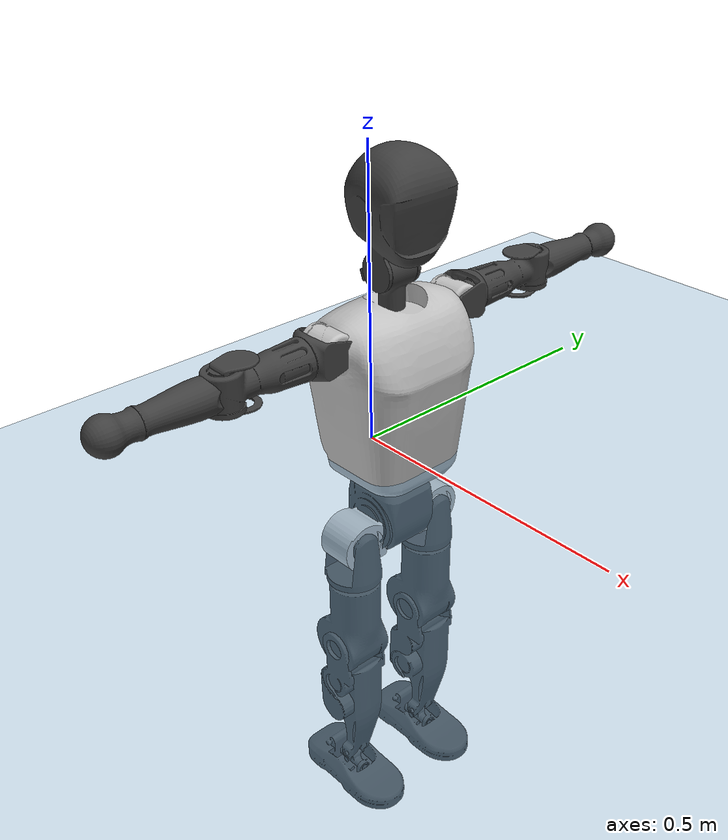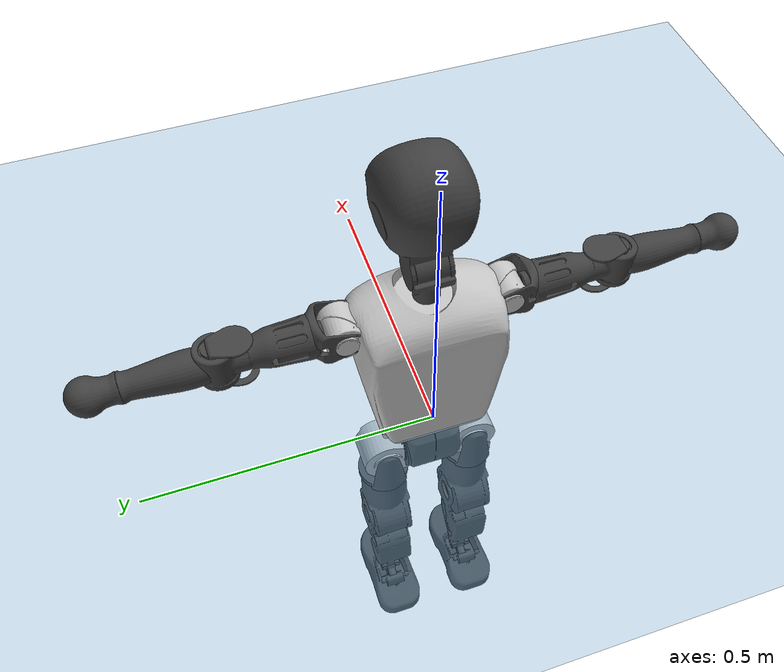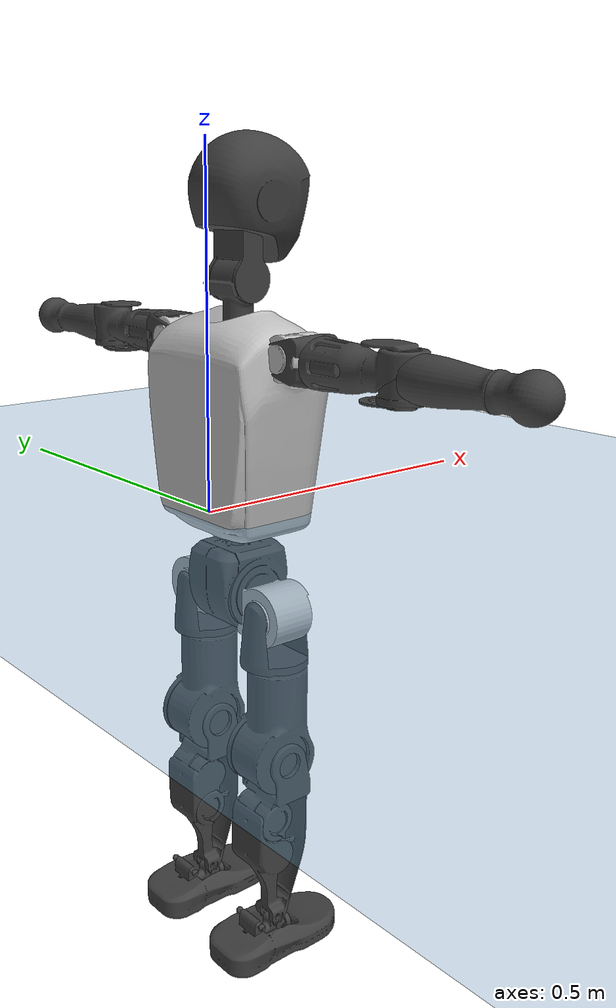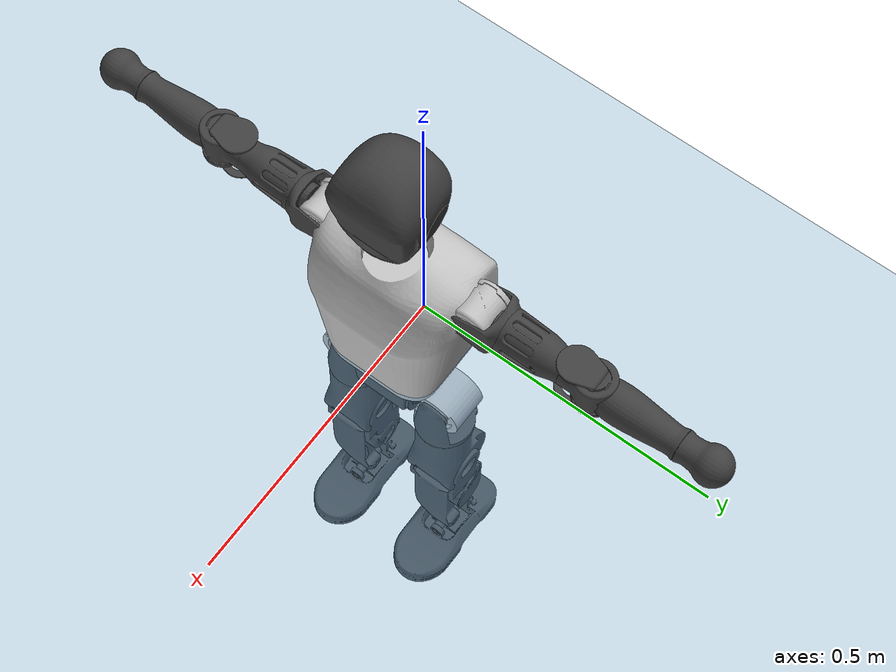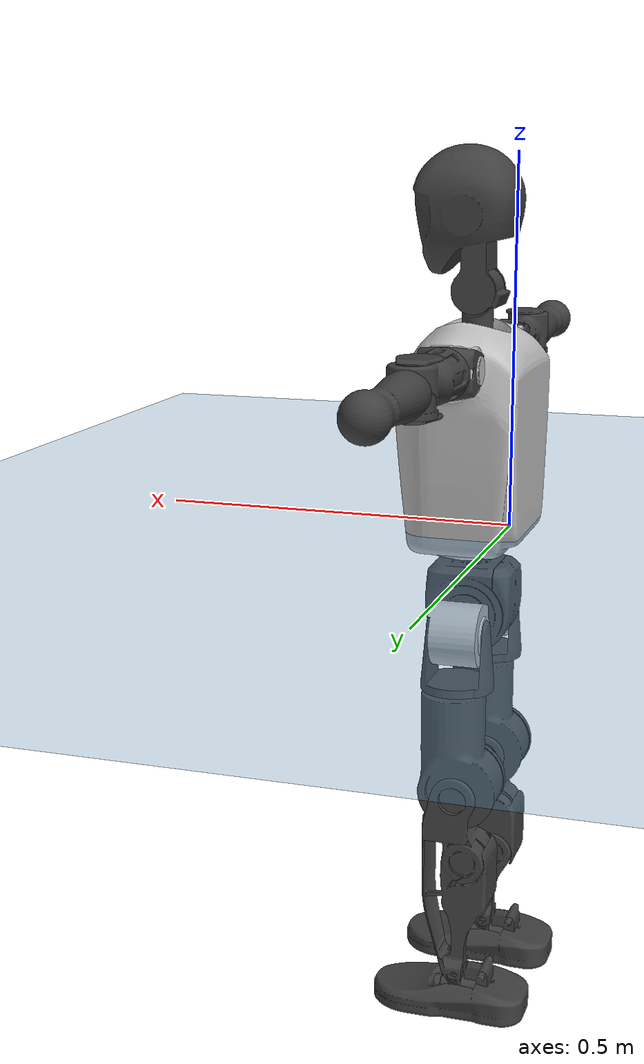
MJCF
<mujoco model="T1">
  <compiler angle="radian" assetdir="assets" balanceinertia="true" inertiafromgeom="false"/>

  <option timestep="0.005" density="1.2" viscosity="2e-05"/>

  <size nkey="1"/>

  <visual>
    <quality shadowsize="8192"/>
    <map shadowclip="0.5"/>
  </visual>

  <default>
    <default class="/">
      <joint armature="0.01" damping="0.01" frictionloss="0.1"/>
      <geom contype="0" conaffinity="0" group="1" solref="-1000 -80"/>
      <site size="0.01 0.005 0.005" group="5"/>
      <general forcelimited="true" biastype="affine" gainprm="25" biasprm="0 -25 -0.6"/>
      <default class="t1">
        <geom rgba="0.25 0.25 0.25 1"/>
        <default class="visual">
          <geom type="mesh" group="2"/>
        </default>
        <default class="collision">
          <geom group="3"/>
        </default>
        <default class="foot">
          <geom size="0.1115 0.05 0.015" type="box" condim="6" group="4" priority="1" solimp="0.015 1 0.015"/>
        </default>
        <default class="reward_collision_sphere">
          <geom group="5" rgba="1 0 0 1"/>
        </default>
      </default>
    </default>
  </default>

  <asset>
    <texture type="skybox" colorspace="auto" name="//unnamed_texture_0" builtin="gradient" rgb1="0.95 0.95 0.95" rgb2="0.95 0.95 0.95" width="100" height="600"/>
    <texture type="2d" colorspace="auto" name="texplane" builtin="checker" rgb1="0.345 0.575 0.748" rgb2="0.345 0.575 0.748" markrgb="1 1 1" width="512" height="512"/>
    <material name="MatPlane" class="/" texture="texplane" texuniform="true" texrepeat="2 2" specular="0.9"/>
    <mesh name="Trunk" class="/" file="Trunk.stl"/>
    <mesh name="H1" class="/" file="H1.stl"/>
    <mesh name="H2" class="/" file="H2.stl"/>
    <mesh name="AL1" class="/" file="AL1.stl"/>
    <mesh name="AL2" class="/" file="AL2.stl"/>
    <mesh name="AL3" class="/" file="AL3.stl"/>
    <mesh name="left_hand_link" class="/" file="left_hand_link.stl"/>
    <mesh name="AR1" class="/" file="AR1.stl"/>
    <mesh name="AR2" class="/" file="AR2.stl"/>
    <mesh name="AR3" class="/" file="AR3.stl"/>
    <mesh name="right_hand_link" class="/" file="right_hand_link.stl"/>
    <mesh name="Waist" class="/" file="Waist.stl"/>
    <mesh name="Hip_Pitch_Left" class="/" file="Hip_Pitch_Left.stl"/>
    <mesh name="Hip_Roll_Left" class="/" file="Hip_Roll_Left.stl"/>
    <mesh name="Hip_Yaw_Left" class="/" file="Hip_Yaw_Left.stl"/>
    <mesh name="Shank_Left" class="/" file="Shank_Left.stl"/>
    <mesh name="Ankle_Cross_Left" class="/" file="Ankle_Cross_Left.stl"/>
    <mesh name="left_foot_link" class="/" file="left_foot_link.stl"/>
    <mesh name="Hip_Pitch_Right" class="/" file="Hip_Pitch_Right.stl"/>
    <mesh name="Hip_Roll_Right" class="/" file="Hip_Roll_Right.stl"/>
    <mesh name="Hip_Yaw_Right" class="/" file="Hip_Yaw_Right.stl"/>
    <mesh name="Shank_Right" class="/" file="Shank_Right.stl"/>
    <mesh name="Ankle_Cross_Right" class="/" file="Ankle_Cross_Right.stl"/>
    <mesh name="right_foot_link" class="/" file="right_foot_link.stl"/>
  </asset>

  <worldbody>
    <geom name="floor" class="/" size="100 100 0.125" type="plane" group="0" material="MatPlane"/>
    <light name="toplight_shadow" class="/" pos="0 0 5" dir="0.0990148 0.0990148 -0.990148" type="directional" ambient="0.04 0.04 0.04" diffuse="0.55 0.55 0.55" specular="0.12 0.12 0.12"/>
    <light name="toplight_fill" class="/" pos="0 0 5" dir="0.0990148 0.0990148 -0.990148" type="directional" castshadow="false" ambient="0.04 0.04 0.04" diffuse="0.3 0.3 0.3" specular="0.08 0.08 0.08"/>
    <body name="trunk" childclass="t1" pos="0.000134664 -0.000918022 0.00192928" quat="1 4.73415e-05 1.01573e-05 -5.85116e-05">
      <inertial pos="0.0460021 -0.00261155 0.110641" quat="0.99992 0.0014462 -0.0121543 -0.00330592" mass="8.2842" diaginertia="0.0358169 0.0245041 0.0716694"/>
      <joint name="//unnamed_joint_0" type="free" armature="0" damping="0" frictionloss="0"/>
      <geom name="//unnamed_geom_1" class="visual" rgba="0.76 0.76 0.76 1" mesh="Trunk"/>
      <geom name="//unnamed_geom_2" class="collision" size="0.0668079 0.0890772 0.133616" pos="0.0495948 0 0.126037" type="box"/>
      <geom name="//unnamed_geom_3" class="reward_collision_sphere" size="0.102439" pos="0.0495948 0 0.105031"/>
      <geom name="//unnamed_geom_4" class="reward_collision_sphere" size="0.0133616" pos="0.0495948 0.0676117 0"/>
      <geom name="//unnamed_geom_5" class="reward_collision_sphere" size="0.0133616" pos="0.0495948 -0.0676117 0"/>
      <geom name="//unnamed_geom_6" class="reward_collision_sphere" size="0.0133616" pos="0.0495948 0.0851111 0.189055"/>
      <geom name="//unnamed_geom_7" class="reward_collision_sphere" size="0.0133616" pos="0.0495948 -0.0851111 0.189055"/>
      <site name="imu" pos="-0.000382956 0.012216 0.00198072" size="0.00890772"/>
      <camera name="track" pos="0 -1.59086 0" quat="0.707107 0.707107 0 0" mode="trackcom"/>
      <camera name="ego_camera" pos="0.100843 0 0.441129" quat="-0.5 -0.5 0.5 0.5"/>
      <body name="H1" pos="0.0514642 -0.00133176 0.255639" quat="0.999999 -0.00103792 0.000510383 -6.8652e-05">
        <inertial pos="-0.00152568 -0.000304082 0.0599311" quat="0.761882 -0.0116503 -0.00082456 0.64761" mass="0.307674" diaginertia="9.37897e-05 7.21431e-05 0.000196504"/>
        <joint name="AAHead_yaw" pos="0 0 0" axis="-0.00214913 -0.00297368 0.999993" range="-1.57729 1.62315" armature="0.00867916" damping="0" frictionloss="0.0838433"/>
        <geom name="//unnamed_geom_8" class="visual" mesh="H1"/>
        <body name="H2" pos="-0.000302051 0.000361096 0.0621895" quat="0.999999 -0.00033408 0.00108224 -0.000676">
          <inertial pos="0.00567422 0.00154981 0.105362" quat="0.988071 0.108199 -0.0717881 -0.0827983" mass="0.445378" diaginertia="0.00078536 0.000613085 0.00216116"/>
          <joint name="Head_pitch" pos="0 0 0" axis="9.76039e-05 -0.999961 0.0088368" range="-1.24377 0.354434" armature="0.00919781" damping="0.00582554" frictionloss="0.0910714"/>
          <geom name="//unnamed_geom_9" class="visual" mesh="H2"/>
          <geom name="//unnamed_geom_10" class="collision" size="0.0712618" pos="0.00826579 0 0.115534"/>
          <geom name="//unnamed_geom_11" class="reward_collision_sphere" size="0.0801695" pos="0.0165316 0 0.105031"/>
        </body>
      </body>
      <body name="AL1" pos="0.049402 0.0864198 0.229031" quat="1 0.000378174 0.000419092 -1.75137e-05">
        <inertial pos="-0.00154575 0.0347113 6.35136e-05" quat="0.511176 0.496798 -0.493789 0.498059" mass="0.367741" diaginertia="0.000515062 0.000401871 0.000363299"/>
        <joint name="Left_Shoulder_Pitch" pos="0 0 0" axis="-0.00225583 0.999983 -0.00535707" range="-3.25438 1.21464" armature="0.00815592" damping="0.00471892" frictionloss="0.0891928"/>
        <geom name="//unnamed_geom_12" class="visual" rgba="0.76 0.76 0.76 1" mesh="AL1"/>
        <body name="AL2" pos="0.00184284 0.0390254 0.000222013" quat="0.999999 0.000376144 0.000185456 0.00117096">
          <inertial pos="0.00590621 0.030664 -0.000362985" quat="0.48974 0.510735 -0.486288 0.512667" mass="0.108813" diaginertia="0.000149369 0.000106266 0.000216381"/>
          <joint name="Left_Shoulder_Roll" pos="0 0 0" axis="-0.999998 -0.00100588 0.00170887" range="-1.57244 1.75991" armature="0.0095224" damping="0.0161069" frictionloss="0.0904147"/>
          <geom name="//unnamed_geom_13" class="visual" mesh="AL2"/>
          <body name="AL3" pos="2.24968e-05 0.0486786 0.00020383" quat="0.999999 -0.00108752 0.000346975 0.000485431">
            <inertial pos="0.00229247 0.0669755 -0.00032843" quat="0.710009 0.704086 0.00938059 -0.00788672" mass="0.746062" diaginertia="0.00519535 0.00434964 0.00082491"/>
            <joint name="Left_Elbow_Pitch" pos="0 0 0" axis="-0.00367051 -0.999988 -0.00338318" range="-2.28305 2.32212" armature="0.00990262" damping="0.00945476" frictionloss="0.100993"/>
            <geom name="//unnamed_geom_14" class="visual" mesh="AL3"/>
            <geom name="//unnamed_geom_15" class="collision" size="0.0267232 0.0668079" pos="0 0.0397716 0" quat="0.707105 0.707108 0 0" type="cylinder"/>
            <geom name="//unnamed_geom_16" class="reward_collision_sphere" size="0.0320678"/>
            <body name="left_hand_link" pos="-6.11806e-05 0.116783 -5.51962e-05" quat="0.999999 -0.000349222 -0.00106636 0.000673206">
              <inertial pos="0.0011208 0.0889608 0.000926313" quat="0.706627 0.707567 -0.00305498 -0.00425027" mass="0.229462" diaginertia="0.00324119 0.00264513 0.000265573"/>
              <joint name="Left_Elbow_Yaw" pos="0 0 0" axis="0.00373554 -0.0132716 0.999905" range="-2.44747 0.0542625" armature="0.00799361" damping="0.000583432" frictionloss="0.0908987"/>
              <geom name="//unnamed_geom_17" class="visual" mesh="left_hand_link"/>
              <geom name="//unnamed_geom_18" class="collision" size="0.0267232 0.0779426" pos="0 0.103406 0" quat="0.707105 0.707108 0 0" type="cylinder"/>
              <geom name="//unnamed_geom_19" class="reward_collision_sphere" size="0.0445386"/>
              <geom name="//unnamed_geom_20" class="reward_collision_sphere" size="0.031177" pos="0 0.0874974 0"/>
              <geom name="//unnamed_geom_21" class="reward_collision_sphere" size="0.031177" pos="0 0.171018 0"/>
            </body>
          </body>
        </body>
      </body>
      <body name="AR1" pos="0.0481163 -0.0808317 0.226993" quat="1 -0.000266775 0.000392852 0.000245521">
        <inertial pos="-0.00154751 -0.0384634 0.000584767" quat="0.504076 0.493173 -0.502823 0.499857" mass="0.377127" diaginertia="0.000523626 0.000409787 0.000371223"/>
        <joint name="Right_Shoulder_Pitch" pos="0 0 0" axis="0.0128529 -0.999891 -0.00727507" range="-1.22734 3.36181" armature="0.00934199" damping="0.00697419" frictionloss="0.0772115"/>
        <geom name="//unnamed_geom_22" class="visual" rgba="0.76 0.76 0.76 1" mesh="AR1"/>
        <body name="AR2" pos="0.00218282 -0.0384026 -0.00104429" quat="1 -4.44814e-05 6.79138e-05 0.000147714">
          <inertial pos="0.00512645 -0.0304804 -0.000266814" quat="0.514277 0.487317 -0.508781 0.489064" mass="0.120628" diaginertia="0.000160418 0.000113011 0.000231786"/>
          <joint name="Right_Shoulder_Roll" pos="0 0 0" axis="-1 -0.000223249 0.000609862" range="-1.74182 1.60816" armature="0.0092528" damping="0" frictionloss="0.0988258"/>
          <geom name="//unnamed_geom_23" class="visual" mesh="AR2"/>
          <body name="AR3" pos="-0.00276924 -0.0496196 -0.00152866" quat="1 -7.46947e-05 9.94278e-05 9.56847e-07">
            <inertial pos="-9.04297e-05 -0.065994 0.000704082" quat="0.707349 0.706865 -1.77061e-05 5.25407e-05" mass="0.762977" diaginertia="0.00512424 0.00421247 0.000822838"/>
            <joint name="Right_Elbow_Pitch" pos="0 0 0" axis="-0.00144503 0.999996 -0.00242404" range="-2.31181 2.22129" armature="0.00871502" damping="0.0161953" frictionloss="0.0903246"/>
            <geom name="//unnamed_geom_24" class="visual" mesh="AR3"/>
            <geom name="//unnamed_geom_25" class="collision" size="0.0267232 0.0668079" pos="0 -0.0397716 0" quat="0.707105 0.707108 0 0" type="cylinder"/>
            <geom name="//unnamed_geom_26" class="reward_collision_sphere" size="0.0320678"/>
            <body name="right_hand_link" pos="-0.000978395 -0.116591 0.0011846" quat="1 -2.46886e-05 0.000275952 -0.000269167">
              <inertial pos="-6.99791e-05 -0.0868136 -0.00155851" quat="0.710359 0.703835 -0.00225784 -0.000577422" mass="0.220169" diaginertia="0.00308453 0.00257073 0.000271565"/>
              <joint name="Right_Elbow_Yaw" pos="0 0 0" axis="0.0096052 0.00690909 0.99993" stiffness="0.000212507" range="-0.0127998 2.4857" armature="0.00907559" damping="0.00725477" frictionloss="0.0886527"/>
              <geom name="//unnamed_geom_27" class="visual" mesh="right_hand_link"/>
              <geom name="//unnamed_geom_28" class="collision" size="0.0267232 0.0779426" pos="0 -0.103406 0" quat="0.707105 0.707108 0 0" type="cylinder"/>
              <geom name="//unnamed_geom_29" class="reward_collision_sphere" size="0.0445386"/>
              <geom name="//unnamed_geom_30" class="reward_collision_sphere" size="0.031177" pos="0 -0.0874974 0"/>
              <geom name="//unnamed_geom_31" class="reward_collision_sphere" size="0.031177" pos="0 -0.171018 0"/>
            </body>
          </body>
        </body>
      </body>
      <body name="Waist" pos="0.0493132 -0.00257845 -0.122099" quat="0.999999 -0.000539816 -0.000324734 -0.000956202">
        <inertial pos="0.001026 -0.00311992 0.00687134" quat="0.983644 0.00036569 -0.180102 0.00269964" mass="1.80641" diaginertia="0.00201092 0.00162988 0.00590776"/>
        <joint name="Waist" pos="0 0 0" axis="0.00318592 -0.00651663 0.999974" stiffness="0.000267322" range="-1.57954 1.56519" armature="0.00846421" damping="0" frictionloss="0.077342"/>
        <geom name="//unnamed_geom_32" class="visual" mesh="Waist"/>
        <body name="Hip_Pitch_Left" pos="0.00125751 0.0821371 0.00200528" quat="0.999999 -0.000453418 0.00114222 -0.000605583">
          <inertial pos="0.00126826 -0.00510288 -0.0192089" quat="0.974965 0.221829 0.0150096 0.00306965" mass="0.719417" diaginertia="0.000704193 0.000479299 0.00159686"/>
          <joint name="Left_Hip_Pitch" pos="0 0 0" axis="0.00490715 0.999965 -0.00671944" range="-1.78466 1.55419" armature="0.00940208" damping="0.0121921" frictionloss="0.0868943"/>
          <geom name="//unnamed_geom_33" class="visual" rgba="0.76 0.76 0.76 1" mesh="Hip_Pitch_Left"/>
          <body name="Hip_Roll_Left" pos="0.00254043 0.000697201 -0.0202751" quat="0.999999 -0.000672033 0.000494084 0.00104742">
            <inertial pos="-0.00136238 -0.00243679 -0.0575522" quat="0.701694 -0.00880385 -0.0167243 0.712228" mass="0.270499" diaginertia="0.000645431 0.000473484 0.000657255"/>
            <joint name="Left_Hip_Roll" pos="0 0 0" axis="-0.999928 -0.00943544 0.00744955" range="-1.60419 0.253599" armature="0.00996679" damping="0.00665588" frictionloss="0.0880814"/>
            <geom name="//unnamed_geom_34" class="visual" mesh="Hip_Roll_Left"/>
            <geom name="//unnamed_geom_35" class="reward_collision_sphere" size="0.0489925"/>
            <body name="Hip_Yaw_Left" pos="0.00251349 -0.000492327 -0.0842928" quat="0.999999 0.00091407 -0.000734938 0.000918678">
              <inertial pos="-0.00649582 0.00014324 -0.0943405" quat="0.697241 -0.0374329 -0.0300741 0.715227" mass="1.54255" diaginertia="0.00987182 0.00817141 0.00344003"/>
              <joint name="Left_Hip_Yaw" pos="0 0 0" axis="-0.00161059 -0.00124028 -0.999998" range="-1.02643 0.95411" armature="0.00866496" damping="0.0156375" frictionloss="0.0896801"/>
              <geom name="//unnamed_geom_36" class="visual" mesh="Hip_Yaw_Left"/>
              <geom name="//unnamed_geom_37" class="collision" size="0.0445386 0.0712618" type="cylinder"/>
              <body name="Shank_Left" pos="-0.0103984 0.000771189 -0.144101" quat="1 0.000102735 -5.22042e-05 4.11658e-05">
                <inertial pos="-0.00261587 -0.00222723 -0.130383" quat="0.997575 0.00339758 -0.0281324 0.0635715" mass="1.20504" diaginertia="0.013357 0.0106642 0.00231501"/>
                <joint name="Left_Knee_Pitch" pos="0 0 0" axis="-0.000969316 0.999996 0.00267161" range="0.0109369 2.33826" armature="0.00913068" damping="0.00915975" frictionloss="0.0883793"/>
                <geom name="//unnamed_geom_38" class="visual" mesh="Shank_Left"/>
                <geom name="//unnamed_geom_39" class="collision" size="0.0445386 0.0668079" pos="0 0 -0.126037" type="cylinder"/>
                <geom name="//unnamed_geom_40" class="reward_collision_sphere" size="0.0579002"/>
                <body name="Ankle_Cross_Left" pos="-0.000371947 -0.000826104 -0.292071" quat="1 0.000249914 -0.0003459 -0.000128686">
                  <inertial pos="-0.0011693 -0.00085285 -0.00889413" quat="0.44387 0.551422 0.549801 0.443433" mass="0.0537381" diaginertia="1.13068e-05 8.27408e-06 1.46491e-05"/>
                  <joint name="Left_Ankle_Pitch" pos="0 0 0" axis="-0.00271273 0.999994 -0.00213806" range="-0.853567 0.333209" armature="0.00921745" damping="0.0110048" frictionloss="0.0816065"/>
                  <geom name="//unnamed_geom_41" class="visual" mesh="Ankle_Cross_Left"/>
                  <body name="left_foot_link" pos="-0.000865857 0.00234095 -0.0124666" quat="1 -0.000523836 3.94549e-05 8.76177e-05">
                    <inertial pos="-0.000849108 0.00220707 -0.00986271" quat="0.00529309 0.619794 -0.00261117 0.784742" mass="0.462556" diaginertia="0.00106174 0.000755728 0.00276412"/>
                    <joint name="Left_Ankle_Roll" pos="0 0 0" axis="-0.999961 -0.00484708 0.0074369" range="-0.427242 0.493653" armature="0.00996662" damping="0.010245" frictionloss="0.0858762"/>
                    <geom name="//unnamed_geom_42" class="visual" mesh="left_foot_link"/>
                    <geom name="left_foot" class="foot" size="0.109294 0.0494156 0.0141593" pos="0.00826579 0 -0.0157546"/>
                    <geom name="//unnamed_geom_44" class="reward_collision_sphere" size="0.0463202" pos="0.00826579 0 -0.0157546"/>
                    <geom name="//unnamed_geom_45" class="reward_collision_sphere" size="0.0267232" pos="0.078525 -0.0182949 -0.0157546"/>
                    <geom name="//unnamed_geom_46" class="reward_collision_sphere" size="0.0267232" pos="-0.0578606 -0.0182949 -0.0157546"/>
                    <site name="left_foot" class="foot" pos="0.00826579 0 -0.0157546" size="0.00890772"/>
                  </body>
                </body>
              </body>
            </body>
          </body>
        </body>
        <body name="Hip_Pitch_Right" pos="0.00185133 -0.0849406 -0.00190496" quat="1 -0.000112167 5.11238e-06 -8.27228e-05">
          <inertial pos="-0.00204533 0.00555613 -0.0186542" quat="0.972913 -0.230541 0.0158183 -0.00641852" mass="0.723606" diaginertia="0.00069642 0.00046634 0.00159571"/>
          <joint name="Right_Hip_Pitch" pos="0 0 0" axis="-0.00332454 -0.999994 -0.000960947" range="-1.59314 1.77986" armature="0.0100763" damping="0.0102132" frictionloss="0.0881065"/>
          <geom name="//unnamed_geom_47" class="visual" rgba="0.76 0.76 0.76 1" mesh="Hip_Pitch_Right"/>
          <body name="Hip_Roll_Right" pos="-2.86235e-05 -0.00117471 -0.0191737" quat="1 7.84543e-05 0.000244131 -1.88155e-05">
            <inertial pos="0.00157163 -0.00314025 -0.0581643" quat="0.710048 0.00591938 -0.00545074 0.704107" mass="0.260375" diaginertia="0.000646977 0.000470491 0.000635439"/>
            <joint name="Right_Hip_Roll" pos="0 0 0" axis="-0.999992 0.00252184 -0.00299161" range="-0.203646 1.57078" armature="0.00896247" damping="0.00266789" frictionloss="0.0801987"/>
            <geom name="//unnamed_geom_48" class="visual" mesh="Hip_Roll_Right"/>
            <geom name="//unnamed_geom_49" class="reward_collision_sphere" size="0.0489925"/>
            <body name="Hip_Yaw_Right" pos="0.00266274 -0.0011913 -0.0853369" quat="0.999999 -0.000952729 0.000564352 0.000365669">
              <inertial pos="-0.00483147 -0.00309247 -0.0938773" quat="0.716342 -0.0326219 -0.0348637 0.696114" mass="1.49775" diaginertia="0.00965512 0.0078325 0.00324822"/>
              <joint name="Right_Hip_Yaw" pos="0 0 0" axis="0.0100079 0.000106931 -0.99995" range="-1.02036 1.04981" armature="0.00934643" damping="0.00647507" frictionloss="0.0896225"/>
              <geom name="//unnamed_geom_50" class="visual" mesh="Hip_Yaw_Right"/>
              <geom name="//unnamed_geom_51" class="collision" size="0.0445386 0.0712618" type="cylinder"/>
              <body name="Shank_Right" pos="-0.0110068 -0.00107627 -0.139608" quat="1 -7.46833e-05 -0.000164271 0.000298767">
                <inertial pos="-0.00448578 0.000800574 -0.128922" quat="0.999152 -0.0049247 -0.0246531 -0.0326176" mass="1.22443" diaginertia="0.0127778 0.0109154 0.00244566"/>
                <joint name="Right_Knee_Pitch" pos="0 0 0" axis="0.00031834 -1 -0.000185453" range="-2.3346 -0.0102667" armature="0.00899811" damping="0.00361589" frictionloss="0.0912356"/>
                <geom name="//unnamed_geom_52" class="visual" mesh="Shank_Right"/>
                <geom name="//unnamed_geom_53" class="collision" size="0.0445386 0.0668079" pos="0 0 -0.126037" type="cylinder"/>
                <geom name="//unnamed_geom_54" class="reward_collision_sphere" size="0.0579002"/>
                <body name="Ankle_Cross_Right" pos="0.00104189 -0.00132392 -0.294426" quat="0.999999 0.000443703 0.000953664 -2.59944e-05">
                  <inertial pos="-0.00189223 0.000332405 -0.0110233" quat="0.438125 0.560017 0.552578 0.434839" mass="0.0497973" diaginertia="1.04834e-05 8.11868e-06 1.35783e-05"/>
                  <joint name="Right_Ankle_Pitch" pos="0 0 0" axis="0.00230048 -0.99993 -0.0116305" range="-0.316384 0.856678" armature="0.00900208" damping="0" frictionloss="0.079596"/>
                  <geom name="//unnamed_geom_55" class="visual" mesh="Ankle_Cross_Right"/>
                  <body name="right_foot_link" pos="-0.000594152 -0.000920231 -0.0128579" quat="1 -0.000109964 9.24832e-06 0.000210089">
                    <inertial pos="-0.00264618 -0.00199775 -0.00964086" quat="0.00524499 0.620823 -0.00629327 0.783908" mass="0.485238" diaginertia="0.00105369 0.000768795 0.00277643"/>
                    <joint name="Right_Ankle_Roll" pos="0 0 0" axis="-0.999999 0.0010253 0.00100648" range="-0.419064 0.444925" armature="0.00904955" damping="0.0212498" frictionloss="0.091331"/>
                    <geom name="//unnamed_geom_56" class="visual" mesh="right_foot_link"/>
                    <geom name="right_foot" class="foot" size="0.095908 0.0458188 0.0131336" pos="0.00826579 0 -0.0157546"/>
                    <geom name="//unnamed_geom_58" class="reward_collision_sphere" size="0.0356309"/>
                    <geom name="//unnamed_geom_59" class="reward_collision_sphere" size="0.0267232" pos="0.00826579 0 -0.0157546"/>
                    <geom name="//unnamed_geom_60" class="reward_collision_sphere" size="0.0267232" pos="0.078525 0.0182949 -0.0157546"/>
                    <geom name="//unnamed_geom_61" class="reward_collision_sphere" size="0.0267232" pos="-0.0578606 0.0182949 -0.0157546"/>
                    <site name="right_foot" class="foot" pos="0.00826579 0 -0.0157546" size="0.00890772"/>
                  </body>
                </body>
              </body>
            </body>
          </body>
        </body>
      </body>
    </body>
  </worldbody>

  <contact>
    <pair class="/" geom1="floor" geom2="left_foot" name="//unnamed_contact_0"/>
    <pair class="/" geom1="floor" geom2="right_foot" name="//unnamed_contact_1"/>
  </contact>

  <actuator>
    <general name="AAHead_yaw" class="/" joint="AAHead_yaw" forcerange="-6.59926 6.59926" gainprm="21.8607" biasprm="0 -21.8607 -0.507309"/>
    <general name="Head_pitch" class="/" joint="Head_pitch" forcerange="-6.64322 6.64322" gainprm="21.8607" biasprm="0 -21.8607 -0.507309"/>
    <general name="Left_Shoulder_Pitch" class="/" joint="Left_Shoulder_Pitch" forcerange="-16.1903 16.1903" gainprm="21.8607" biasprm="0 -21.8607 -0.507309"/>
    <general name="Left_Shoulder_Roll" class="/" joint="Left_Shoulder_Roll" forcerange="-15.9044 15.9044" gainprm="21.8607" biasprm="0 -21.8607 -0.507309"/>
    <general name="Left_Elbow_Pitch" class="/" joint="Left_Elbow_Pitch" forcerange="-17.6339 17.6339" gainprm="21.8607" biasprm="0 -21.8607 -0.507309"/>
    <general name="Left_Elbow_Yaw" class="/" joint="Left_Elbow_Yaw" forcerange="-15.3352 15.3352" gainprm="21.8607" biasprm="0 -21.8607 -0.507309"/>
    <general name="Right_Shoulder_Pitch" class="/" joint="Right_Shoulder_Pitch" forcerange="-14.5165 14.5165" gainprm="21.8607" biasprm="0 -21.8607 -0.507309"/>
    <general name="Right_Shoulder_Roll" class="/" joint="Right_Shoulder_Roll" forcerange="-15.7162 15.7162" gainprm="21.8607" biasprm="0 -21.8607 -0.507309"/>
    <general name="Right_Elbow_Pitch" class="/" joint="Right_Elbow_Pitch" forcerange="-17.6471 17.6471" gainprm="21.8607" biasprm="0 -21.8607 -0.507309"/>
    <general name="Right_Elbow_Yaw" class="/" joint="Right_Elbow_Yaw" forcerange="-15.7715 15.7715" gainprm="21.8607" biasprm="0 -21.8607 -0.507309"/>
    <general name="Waist" class="/" joint="Waist" forcerange="-27.7485 27.7485" gainprm="21.8607" biasprm="0 -21.8607 -0.507309"/>
    <general name="Left_Hip_Pitch" class="/" joint="Left_Hip_Pitch" forcerange="-41.1458 41.1458" gainprm="21.8607" biasprm="0 -21.8607 -0.507309"/>
    <general name="Left_Hip_Roll" class="/" joint="Left_Hip_Roll" forcerange="-29.2514 29.2514" gainprm="21.8607" biasprm="0 -21.8607 -0.507309"/>
    <general name="Left_Hip_Yaw" class="/" joint="Left_Hip_Yaw" forcerange="-24.084 24.084" gainprm="21.8607" biasprm="0 -21.8607 -0.507309"/>
    <general name="Left_Knee_Pitch" class="/" joint="Left_Knee_Pitch" forcerange="-56.9592 56.9592" gainprm="21.8607" biasprm="0 -21.8607 -0.507309"/>
    <general name="Left_Ankle_Pitch" class="/" joint="Left_Ankle_Pitch" forcerange="-16.0981 16.0981" gainprm="21.8607" biasprm="0 -21.8607 -0.507309"/>
    <general name="Left_Ankle_Roll" class="/" joint="Left_Ankle_Roll" forcerange="-13.1618 13.1618" gainprm="21.8607" biasprm="0 -21.8607 -0.507309"/>
    <general name="Right_Hip_Pitch" class="/" joint="Right_Hip_Pitch" forcerange="-40.5778 40.5778" gainprm="21.8607" biasprm="0 -21.8607 -0.507309"/>
    <general name="Right_Hip_Roll" class="/" joint="Right_Hip_Roll" forcerange="-26.0003 26.0003" gainprm="21.8607" biasprm="0 -21.8607 -0.507309"/>
    <general name="Right_Hip_Yaw" class="/" joint="Right_Hip_Yaw" forcerange="-26.1357 26.1357" gainprm="21.8607" biasprm="0 -21.8607 -0.507309"/>
    <general name="Right_Knee_Pitch" class="/" joint="Right_Knee_Pitch" forcerange="-58.0674 58.0674" gainprm="21.8607" biasprm="0 -21.8607 -0.507309"/>
    <general name="Right_Ankle_Pitch" class="/" joint="Right_Ankle_Pitch" forcerange="-18.4803 18.4803" gainprm="21.8607" biasprm="0 -21.8607 -0.507309"/>
    <general name="Right_Ankle_Roll" class="/" joint="Right_Ankle_Roll" forcerange="-12.0491 12.0491" gainprm="21.8607" biasprm="0 -21.8607 -0.507309"/>
  </actuator>

  <sensor>
    <gyro site="imu" name="imu_angular_velocity"/>
    <velocimeter site="imu" name="imu_linear_velocity"/>
    <framelinvel objtype="site" objname="left_foot" name="left_foot_global_linear_velocity"/>
    <framelinvel objtype="site" objname="right_foot" name="right_foot_global_linear_velocity"/>
  </sensor>

  <keyframe>
    <key name="home" qpos="0 0 0.6385 1 0 0 0 0 0 0 1.4 0 -0.4 0 -1.4 0 0.4 0 -0.4 0 0 0.8 -0.4 0 0.4 0 0 -0.8 0.4 0"/>
  </keyframe>
</mujoco>
